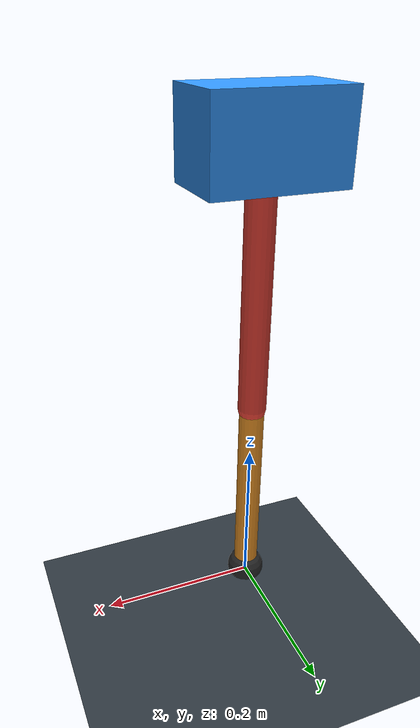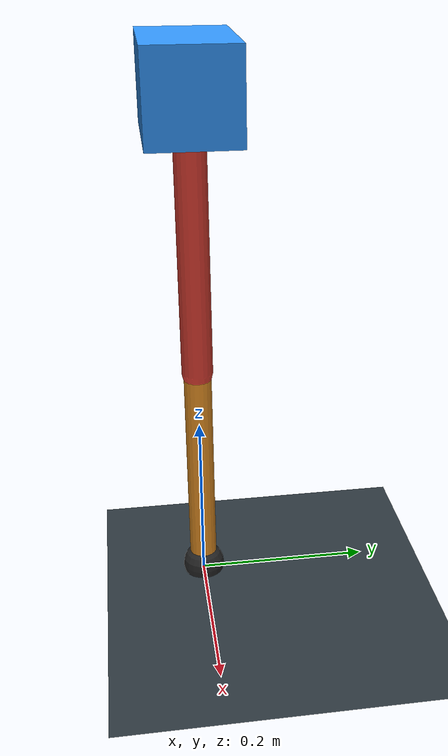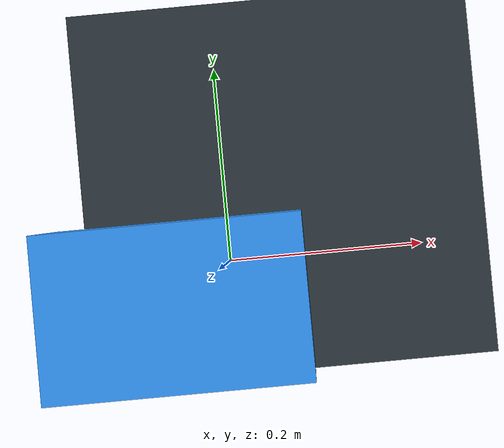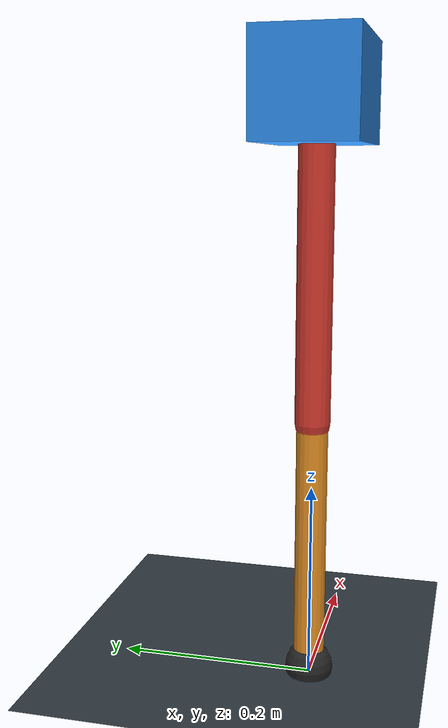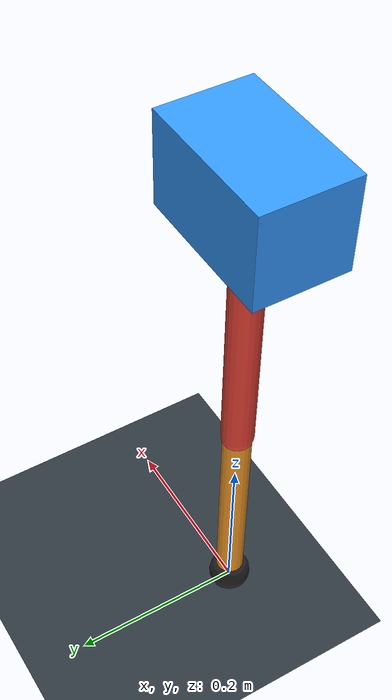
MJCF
<mujoco model="single_axis_two_bar">
  <compiler angle="radian" inertiafromgeom="true"/>
  <option timestep="0.001" integrator="implicitfast" gravity="0 0 -9.81"/>
  <default>
    <joint damping="0.08"/>
    <geom friction="1.2 0.01 0.0001" condim="3"/>
  </default>
  <worldbody>
    <geom name="floor" type="plane" size="5 5 0.1" rgba="0.18 0.22 0.25 1"/>
    <body name="carriage" pos="0 0 0.5900392143433961">
      <joint name="pole_slide" type="slide" axis="0 0 1"/>
      <geom name="payload" type="box" size="0.08 0.05 0.05" mass="2.482139905940369" rgba="0.2 0.6 1 1"/>
      <body name="thigh" pos="0 0 0">
        <joint name="hip" type="hinge" axis="0 1 0"/>
        <geom name="thigh_link" type="capsule" fromto="0 0 0 0 0 -0.32211781302805575" size="0.018" mass="0.22951319819385269" rgba="0.9 0.25 0.2 1"/>
        <body name="shank" pos="0 0 -0.32211781302805575">
          <joint name="knee" type="hinge" axis="0 1 0"/>
          <geom name="shank_link" type="capsule" fromto="0 0 0 0 0 -0.26039684093420823" size="0.016" mass="0.18553619000629656" rgba="0.95 0.6 0.15 1"/>
          <geom name="foot" type="sphere" pos="0 0 -0.26039684093420823" size="0.025" mass="0.03" rgba="0.15 0.15 0.15 1"/>
          <site name="toe" pos="0 0 -0.26039684093420823" size="0.008"/>
        </body>
      </body>
    </body>
  </worldbody>
  <actuator>
    <motor name="hip_motor" joint="hip" ctrlrange="-32.94619708859042 32.94619708859042"/>
    <motor name="knee_motor" joint="knee" ctrlrange="-104.23516318866713 104.23516318866713"/>
  </actuator>
</mujoco>
